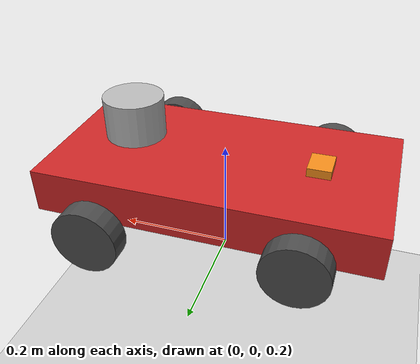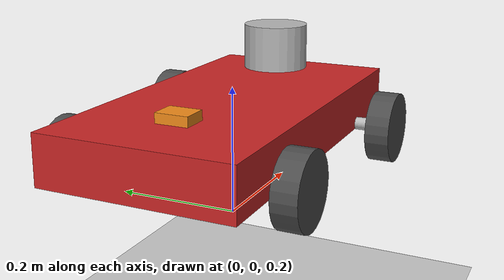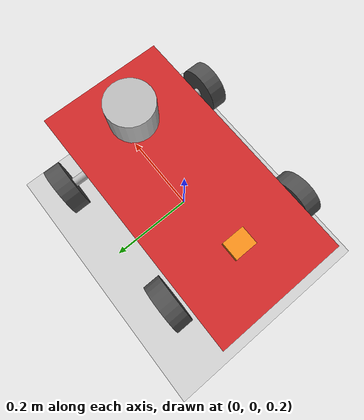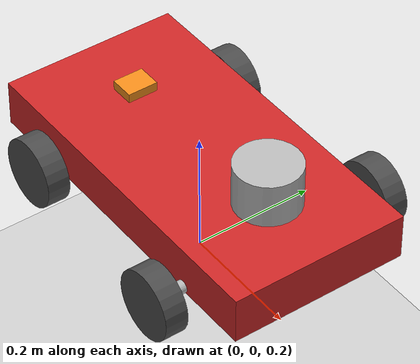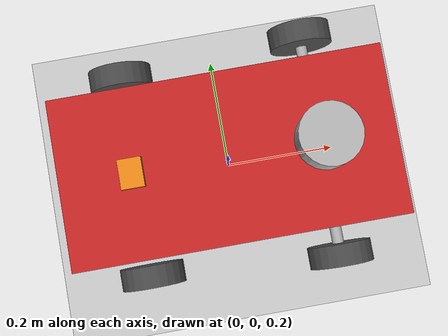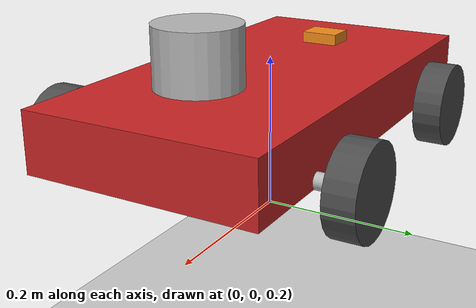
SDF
<?xml version="1.0" ?>
<sdf version="1.8">
  <world name="demo">
    <plugin
      filename="ignition-gazebo-physics-system"
      name="ignition::gazebo::systems::Physics">
    </plugin>
    <plugin
      filename="ignition-gazebo-user-commands-system"
      name="ignition::gazebo::systems::UserCommands">
    </plugin>
    <plugin
      filename="ignition-gazebo-sensors-system"
      name="ignition::gazebo::systems::Sensors">
      <render_engine>ogre2</render_engine>
    </plugin>
    <plugin filename="libignition-gazebo-imu-system.so"
        name="ignition::gazebo::systems::Imu">
    </plugin>
    <plugin
      filename="ignition-gazebo-scene-broadcaster-system"
      name="ignition::gazebo::systems::SceneBroadcaster">
    </plugin>
    <plugin
      filename="BasicSystem"
      name="ack_gazebo::BasicSystem">
    </plugin>
    <plugin
      filename="FullSystem"
      name="ack_gazebo::FullSystem">
    </plugin>

    <light name="sun" type="directional">
      <cast_shadows>true</cast_shadows>
      <pose>0 0 10 0 0 0</pose>
      <diffuse>0.8 0.8 0.8 1</diffuse>
      <specular>0.2 0.2 0.2 1</specular>
      <attenuation>
        <range>1000</range>
        <constant>0.9</constant>
        <linear>0.01</linear>
        <quadratic>0.001</quadratic>
      </attenuation>
      <direction>-0.5 0.1 -0.9</direction>
    </light>

    <model name="ground_plane">
      <static>true</static>
      <link name="link">
        <collision name="collision">
          <geometry>
            <plane>
              <normal>0 0 1</normal>
              <size>100 100</size>
            </plane>
          </geometry>
        </collision>
        <visual name="visual">
          <geometry>
            <plane>
              <normal>0 0 1</normal>
              <size>100 100</size>
            </plane>
          </geometry>
          <material>
            <ambient>0.8 0.8 0.8 1</ambient>
            <diffuse>0.8 0.8 0.8 1</diffuse>
            <specular>0.8 0.8 0.8 1</specular>
          </material>
        </visual>
      </link>
    </model>

    <model name="arv">
      <self_collide>false</self_collide>
      <pose>0 0 0.35 0 0 0</pose>
      <include merge="true">
        <uri>package://ack_description/models/arv</uri>
      </include>

      <plugin
        filename="ignition-gazebo-joint-state-publisher-system"
        name="ignition::gazebo::systems::JointStatePublisher">
      </plugin>

      <plugin
        filename="ignition-gazebo-pose-publisher-system"
        name="ignition::gazebo::systems::PosePublisher">
        <publish_link_pose>true</publish_link_pose>
        <use_pose_vector_msg>true</use_pose_vector_msg>
        <static_publisher>true</static_publisher>
        <static_update_frequency>1</static_update_frequency>
      </plugin>

      <plugin
        filename="ignition-gazebo-odometry-publisher-system"
        name="ignition::gazebo::systems::OdometryPublisher">
        <odom_frame>arv/odom</odom_frame>
        <robot_base_frame>arv</robot_base_frame>
      </plugin>

      <plugin
          filename="ignition-gazebo-ackermann-steering-system"
          name="ignition::gazebo::systems::AckermannSteering">
          <left_joint>LEFT_FRONT_WHEEL_JOINT</left_joint>
          <left_joint>LEFT_REAR_WHEEL_JOINT</left_joint>
          <right_joint>RIGHT_FRONT_WHEEL_JOINT</right_joint>
          <right_joint>RIGHT_REAR_WHEEL_JOINT</right_joint>
          <left_steering_joint>LEFT_HINGE_JOINT</left_steering_joint>
          <right_steering_joint>RIGHT_HINGE_JOINT</right_steering_joint>
          <wheel_separation>0.47</wheel_separation>
          <kingpin_width>0.47</kingpin_width>
          <wheel_base>0.324</wheel_base>
          <steering_limit>0.5</steering_limit>
          <wheel_radius>0.15</wheel_radius>
          <odom_publish_frequency>50</odom_publish_frequency>
          <min_velocity>-10</min_velocity>
          <max_velocity>10</max_velocity>
          <min_acceleration>-10</min_acceleration>
          <max_acceleration>10</max_acceleration>
      </plugin>
    </model>
  </world>
</sdf>

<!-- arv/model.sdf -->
<sdf version='1.9'>
  <model name='arv'>
    <link name='base_link'>
      <inertial>
        <pose>0 0 0 0 0 0</pose>
        <mass>2.2999999999999998</mass>
        <inertia>
          <ixx>0.01719729166666667</ixx>
          <ixy>0</ixy>
          <ixz>0</ixz>
          <iyy>0.06335062499999998</iyy>
          <iyz>0</iyz>
          <izz>0.06335062499999998</izz>
        </inertia>
      </inertial>
      <collision name='base_link_collision'>
        <pose>0 0 0 0 0 0</pose>
        <geometry>
          <box>
            <size>0.57 0.29 0.075</size>
          </box>
        </geometry>
        <surface>
          <contact>
            <ode/>
          </contact>
          <friction>
            <ode/>
          </friction>
        </surface>
      </collision>
      <visual name='base_link_visual'>
        <pose>0 0 0 0 0 0</pose>
        <geometry>
          <box>
            <size>0.57 0.29 0.075</size>
          </box>
        </geometry>
        <material>
          <script>
            <name>Gazebo/Red</name>
            <uri>file://media/materials/scripts/gazebo.material</uri>
          </script>
          <diffuse>1 0 0.125 1</diffuse>
          <ambient>1 0 0.125 1</ambient>
        </material>
      </visual>
    </link>
    <joint name='LEFT_HINGE_JOINT' type='revolute'>
      <pose relative_to='base_link'>0.162 0.16 -0.0295 -1.570796326794896 0 0</pose>
      <parent>base_link</parent>
      <child>LEFT_HINGE</child>
      <axis>
        <xyz>0 -1 0</xyz>
        <limit>
          <lower>-0.53000000000000003</lower>
          <upper>0.53000000000000003</upper>
          <effort>100</effort>
          <velocity>1</velocity>
        </limit>
        <dynamics>
          <damping>0</damping>
          <friction>0</friction>
          <spring_reference>0</spring_reference>
          <spring_stiffness>0</spring_stiffness>
        </dynamics>
      </axis>
    </joint>
    <link name='LEFT_HINGE'>
      <pose relative_to='LEFT_HINGE_JOINT'>0 0 0 0 0 0</pose>
      <inertial>
        <pose>0 0 0 0 0 0</pose>
        <mass>0.029999999999999999</mass>
        <inertia>
          <ixx>3.0000000000000001e-06</ixx>
          <ixy>0</ixy>
          <ixz>0</ixz>
          <iyy>3.0000000000000001e-06</iyy>
          <iyz>0</iyz>
          <izz>1.5e-06</izz>
        </inertia>
      </inertial>
      <visual name='LEFT_HINGE_visual'>
        <pose>0 0 0 0 0 0</pose>
        <geometry>
          <cylinder>
            <length>0.029999999999999999</length>
            <radius>0.01</radius>
          </cylinder>
        </geometry>
      </visual>
    </link>
    <joint name='LEFT_FRONT_WHEEL_JOINT' type='revolute'>
      <pose relative_to='LEFT_HINGE'>0 0 0.0335 0 0 0</pose>
      <parent>LEFT_HINGE</parent>
      <child>LEFT_FRONT_WHEEL</child>
      <axis>
        <xyz>0 0 1</xyz>
        <limit>
          <effort>100</effort>
          <velocity>200</velocity>
          <lower>-10000000000000000</lower>
          <upper>10000000000000000</upper>
        </limit>
        <dynamics>
          <damping>0</damping>
          <friction>0</friction>
          <spring_reference>0</spring_reference>
          <spring_stiffness>0</spring_stiffness>
        </dynamics>
      </axis>
    </joint>
    <link name='LEFT_FRONT_WHEEL'>
      <pose relative_to='LEFT_FRONT_WHEEL_JOINT'>0 0 0 0 0 0</pose>
      <inertial>
        <pose>0 0 0 0 0 0</pose>
        <mass>0.080000000000000002</mass>
        <inertia>
          <ixx>6.9626666666666669e-05</ixx>
          <ixy>0</ixy>
          <ixz>0</ixz>
          <iyy>6.9626666666666669e-05</iyy>
          <iyz>0</iyz>
          <izz>0.000121</izz>
        </inertia>
      </inertial>
      <collision name='LEFT_FRONT_WHEEL_collision'>
        <pose>0 0 0 0 0 0</pose>
        <geometry>
          <cylinder>
            <length>0.036999999999999998</length>
            <radius>0.055</radius>
          </cylinder>
        </geometry>
        <surface>
          <contact>
            <ode>
              <kp>10000000</kp>
              <kd>1</kd>
              <max_vel>100</max_vel>
              <min_depth>0.0050000000000000001</min_depth>
            </ode>
          </contact>
          <friction>
            <ode>
              <mu>0.5</mu>
              <mu2>0.5</mu2>
              <fdir1>1 0 0</fdir1>
            </ode>
          </friction>
        </surface>
      </collision>
      <visual name='LEFT_FRONT_WHEEL_visual'>
        <pose>0 0 0 0 0 0</pose>
        <geometry>
          <cylinder>
            <length>0.036999999999999998</length>
            <radius>0.055</radius>
          </cylinder>
        </geometry>
        <material>
          <script>
            <name>Gazebo/DarkGrey</name>
            <uri>file://media/materials/scripts/gazebo.material</uri>
          </script>
        </material>
      </visual>
    </link>
    <joint name='LEFT_REAR_WHEEL_JOINT' type='revolute'>
      <pose relative_to='base_link'>-0.162 0.1735 -0.0295 1.570796326794896 0 0</pose>
      <parent>base_link</parent>
      <child>LEFT_REAR_WHEEL</child>
      <axis>
        <xyz>0 0 -1</xyz>
        <limit>
          <effort>100</effort>
          <velocity>200</velocity>
          <lower>-10000000000000000</lower>
          <upper>10000000000000000</upper>
        </limit>
        <dynamics>
          <damping>0</damping>
          <friction>0</friction>
          <spring_reference>0</spring_reference>
          <spring_stiffness>0</spring_stiffness>
        </dynamics>
      </axis>
    </joint>
    <link name='LEFT_REAR_WHEEL'>
      <pose relative_to='LEFT_REAR_WHEEL_JOINT'>0 0 0 0 0 0</pose>
      <inertial>
        <pose>0 0 0 0 0 0</pose>
        <mass>0.080000000000000002</mass>
        <inertia>
          <ixx>6.9626666666666669e-05</ixx>
          <ixy>0</ixy>
          <ixz>0</ixz>
          <iyy>6.9626666666666669e-05</iyy>
          <iyz>0</iyz>
          <izz>0.000121</izz>
        </inertia>
      </inertial>
      <collision name='LEFT_REAR_WHEEL_collision'>
        <pose>0 0 0 0 0 0</pose>
        <geometry>
          <cylinder>
            <length>0.036999999999999998</length>
            <radius>0.055</radius>
          </cylinder>
        </geometry>
        <surface>
          <contact>
            <ode>
              <kp>10000000</kp>
              <kd>1</kd>
              <max_vel>100</max_vel>
              <min_depth>0.0050000000000000001</min_depth>
            </ode>
          </contact>
          <friction>
            <ode>
              <mu>0</mu>
              <mu2>0</mu2>
              <fdir1>1 0 0</fdir1>
            </ode>
          </friction>
        </surface>
      </collision>
      <visual name='LEFT_REAR_WHEEL_visual'>
        <pose>0 0 0 0 0 0</pose>
        <geometry>
          <cylinder>
            <length>0.036999999999999998</length>
            <radius>0.055</radius>
          </cylinder>
        </geometry>
        <material>
          <script>
            <name>Gazebo/DarkGrey</name>
            <uri>file://media/materials/scripts/gazebo.material</uri>
          </script>
        </material>
      </visual>
    </link>
    <joint name='RIGHT_HINGE_JOINT' type='revolute'>
      <pose relative_to='base_link'>0.162 -0.16 -0.0295 -1.570796326794896 0 0</pose>
      <parent>base_link</parent>
      <child>RIGHT_HINGE</child>
      <axis>
        <xyz>0 -1 0</xyz>
        <limit>
          <lower>-0.53000000000000003</lower>
          <upper>0.53000000000000003</upper>
          <effort>100</effort>
          <velocity>1</velocity>
        </limit>
        <dynamics>
          <damping>0</damping>
          <friction>0</friction>
          <spring_reference>0</spring_reference>
          <spring_stiffness>0</spring_stiffness>
        </dynamics>
      </axis>
    </joint>
    <link name='RIGHT_HINGE'>
      <pose relative_to='RIGHT_HINGE_JOINT'>0 0 0 0 0 0</pose>
      <inertial>
        <pose>0 0 0 0 0 0</pose>
        <mass>0.029999999999999999</mass>
        <inertia>
          <ixx>3.0000000000000001e-06</ixx>
          <ixy>0</ixy>
          <ixz>0</ixz>
          <iyy>3.0000000000000001e-06</iyy>
          <iyz>0</iyz>
          <izz>1.5e-06</izz>
        </inertia>
      </inertial>
      <visual name='RIGHT_HINGE_visual'>
        <pose>0 0 0 0 0 0</pose>
        <geometry>
          <cylinder>
            <length>0.029999999999999999</length>
            <radius>0.01</radius>
          </cylinder>
        </geometry>
      </visual>
    </link>
    <joint name='RIGHT_FRONT_WHEEL_JOINT' type='revolute'>
      <pose relative_to='RIGHT_HINGE'>0 0 -0.0335 0 0 0</pose>
      <parent>RIGHT_HINGE</parent>
      <child>RIGHT_FRONT_WHEEL</child>
      <axis>
        <xyz>0 0 1</xyz>
        <limit>
          <effort>100</effort>
          <velocity>200</velocity>
          <lower>-10000000000000000</lower>
          <upper>10000000000000000</upper>
        </limit>
        <dynamics>
          <damping>0</damping>
          <friction>0</friction>
          <spring_reference>0</spring_reference>
          <spring_stiffness>0</spring_stiffness>
        </dynamics>
      </axis>
    </joint>
    <link name='RIGHT_FRONT_WHEEL'>
      <pose relative_to='RIGHT_FRONT_WHEEL_JOINT'>0 0 0 0 0 0</pose>
      <inertial>
        <pose>0 0 0 0 0 0</pose>
        <mass>0.080000000000000002</mass>
        <inertia>
          <ixx>6.9626666666666669e-05</ixx>
          <ixy>0</ixy>
          <ixz>0</ixz>
          <iyy>6.9626666666666669e-05</iyy>
          <iyz>0</iyz>
          <izz>0.000121</izz>
        </inertia>
      </inertial>
      <collision name='RIGHT_FRONT_WHEEL_collision'>
        <pose>0 0 0 0 0 0</pose>
        <geometry>
          <cylinder>
            <length>0.036999999999999998</length>
            <radius>0.055</radius>
          </cylinder>
        </geometry>
        <surface>
          <contact>
            <ode>
              <kp>10000000</kp>
              <kd>1</kd>
              <max_vel>100</max_vel>
              <min_depth>0.0050000000000000001</min_depth>
            </ode>
          </contact>
          <friction>
            <ode>
              <mu>0.5</mu>
              <mu2>0.5</mu2>
              <fdir1>1 0 0</fdir1>
            </ode>
          </friction>
        </surface>
      </collision>
      <visual name='RIGHT_FRONT_WHEEL_visual'>
        <pose>0 0 0 0 0 0</pose>
        <geometry>
          <cylinder>
            <length>0.036999999999999998</length>
            <radius>0.055</radius>
          </cylinder>
        </geometry>
        <material>
          <script>
            <name>Gazebo/DarkGrey</name>
            <uri>file://media/materials/scripts/gazebo.material</uri>
          </script>
        </material>
      </visual>
    </link>
    <joint name='RIGHT_REAR_WHEEL_JOINT' type='revolute'>
      <pose relative_to='base_link'>-0.162 -0.1735 -0.0295 1.570796326794896 0 0</pose>
      <parent>base_link</parent>
      <child>RIGHT_REAR_WHEEL</child>
      <axis>
        <xyz>0 0 -1</xyz>
        <limit>
          <effort>100</effort>
          <velocity>200</velocity>
          <lower>-10000000000000000</lower>
          <upper>10000000000000000</upper>
        </limit>
        <dynamics>
          <damping>0</damping>
          <friction>0</friction>
          <spring_reference>0</spring_reference>
          <spring_stiffness>0</spring_stiffness>
        </dynamics>
      </axis>
    </joint>
    <link name='RIGHT_REAR_WHEEL'>
      <pose relative_to='RIGHT_REAR_WHEEL_JOINT'>0 0 0 0 0 0</pose>
      <inertial>
        <pose>0 0 0 0 0 0</pose>
        <mass>0.080000000000000002</mass>
        <inertia>
          <ixx>6.9626666666666669e-05</ixx>
          <ixy>0</ixy>
          <ixz>0</ixz>
          <iyy>6.9626666666666669e-05</iyy>
          <iyz>0</iyz>
          <izz>0.000121</izz>
        </inertia>
      </inertial>
      <collision name='RIGHT_REAR_WHEEL_collision'>
        <pose>0 0 0 0 0 0</pose>
        <geometry>
          <cylinder>
            <length>0.036999999999999998</length>
            <radius>0.055</radius>
          </cylinder>
        </geometry>
        <surface>
          <contact>
            <ode>
              <kp>10000000</kp>
              <kd>1</kd>
              <max_vel>100</max_vel>
              <min_depth>0.0050000000000000001</min_depth>
            </ode>
          </contact>
          <friction>
            <ode>
              <mu>0</mu>
              <mu2>0</mu2>
              <fdir1>1 0 0</fdir1>
            </ode>
          </friction>
        </surface>
      </collision>
      <visual name='RIGHT_REAR_WHEEL_visual'>
        <pose>0 0 0 0 0 0</pose>
        <geometry>
          <cylinder>
            <length>0.036999999999999998</length>
            <radius>0.055</radius>
          </cylinder>
        </geometry>
        <material>
          <script>
            <name>Gazebo/DarkGrey</name>
            <uri>file://media/materials/scripts/gazebo.material</uri>
          </script>
        </material>
      </visual>
    </link>
    <joint name='imu_joint' type='fixed'>
      <pose relative_to='base_link'>-0.162 0 0.0425 0 0 0</pose>
      <parent>base_link</parent>
      <child>imu_link</child>
      <axis>
        <dynamics>
          <spring_reference>0</spring_reference>
          <spring_stiffness>0</spring_stiffness>
        </dynamics>
        <xyz>0 0 1</xyz>
        <limit>
          <lower>-10000000000000000</lower>
          <upper>10000000000000000</upper>
        </limit>
      </axis>
      <physics>
        <ode>
          <limit>
            <cfm>0</cfm>
            <erp>0.20000000000000001</erp>
          </limit>
        </ode>
      </physics>
    </joint>
    <link name='imu_link'>
      <pose relative_to='imu_joint'>0 0 0 0 0 0</pose>
      <inertial>
        <pose>0 0 0 0 0 0</pose>
        <mass>0.01</mass>
        <inertia>
          <ixx>0.0001</ixx>
          <ixy>0</ixy>
          <ixz>0</ixz>
          <iyy>9.9999999999999995e-07</iyy>
          <iyz>0</iyz>
          <izz>0.0001</izz>
        </inertia>
      </inertial>
      <collision name='imu_link_collision'>
        <pose>0 0 0 0 0 0</pose>
        <geometry>
          <box>
            <size>0.001 0.001 0.001</size>
          </box>
        </geometry>
        <surface>
          <contact>
            <ode/>
          </contact>
          <friction>
            <ode/>
          </friction>
        </surface>
      </collision>
      <visual name='imu_link_visual'>
        <pose>0 0 0 0 0 0</pose>
        <geometry>
          <box>
            <size>0.04 0.05 0.02</size>
          </box>
        </geometry>
        <material>
          <script>
            <name>Gazebo/Orange</name>
            <uri>file://media/materials/scripts/gazebo.material</uri>
          </script>
        </material>
      </visual>
      <sensor name='imu_sensor' type='imu'>
        <always_on>true</always_on>
        <update_rate>400</update_rate>
        <visualize>true</visualize>
        <topic>/imu</topic>
        <ignition_frame_id>arv/imu_link</ignition_frame_id>
      </sensor>
    </link>
    <joint name='lidar_joint' type='fixed'>
      <pose relative_to='base_link'>0.162 0 0.08749999999999999 0 0 0</pose>
      <parent>base_link</parent>
      <child>lidar_link</child>
      <axis>
        <dynamics>
          <spring_reference>0</spring_reference>
          <spring_stiffness>0</spring_stiffness>
        </dynamics>
        <xyz>0 0 1</xyz>
        <limit>
          <lower>-10000000000000000</lower>
          <upper>10000000000000000</upper>
        </limit>
      </axis>
      <physics>
        <ode>
          <limit>
            <cfm>0</cfm>
            <erp>0.20000000000000001</erp>
          </limit>
        </ode>
      </physics>
    </joint>
    <link name='lidar_link'>
      <pose relative_to='lidar_joint'>0 0 0 0 0 0</pose>
      <inertial>
        <pose>0 0 0 0 0 0</pose>
        <mass>0.14999999999999999</mass>
        <inertia>
          <ixx>0.00016410712499999999</ixx>
          <ixy>0</ixy>
          <ixz>0</ixz>
          <iyy>0.00016410712499999999</iyy>
          <iyz>0</iyz>
          <izz>0.00019969200000000001</izz>
        </inertia>
      </inertial>
      <collision name='lidar_link_collision'>
        <pose>0 0 0 0 0 0</pose>
        <geometry>
          <cylinder>
            <length>0.0717</length>
            <radius>0.0516</radius>
          </cylinder>
        </geometry>
        <surface>
          <contact>
            <ode/>
          </contact>
          <friction>
            <ode/>
          </friction>
        </surface>
      </collision>
      <visual name='lidar_link_visual'>
        <pose>0 0 0 0 0 0</pose>
        <geometry>
          <cylinder>
            <length>0.0717</length>
            <radius>0.0516</radius>
          </cylinder>
        </geometry>
      </visual>
      <sensor name='gpu_lidar' type='gpu_lidar'>
        <topic>/scan</topic>
        <update_rate>400</update_rate>
        <lidar>
          <scan>
            <horizontal>
              <samples>640</samples>
              <resolution>1</resolution>
              <min_angle>-1.396263</min_angle>
              <max_angle>1.396263</max_angle>
            </horizontal>
            <vertical>
              <samples>1</samples>
              <resolution>1</resolution>
              <min_angle>0</min_angle>
              <max_angle>0</max_angle>
            </vertical>
          </scan>
          <range>
            <min>0.080000000000000002</min>
            <max>10</max>
            <resolution>0.01</resolution>
          </range>
          <noise>
            <type>gaussian</type>
            <mean>0</mean>
            <stddev>0.001</stddev>
          </noise>
        </lidar>
        <visualize>true</visualize>
        <ignition_frame_id>arv/lidar_link</ignition_frame_id>
        <alwaysOn>1</alwaysOn>
      </sensor>
    </link>
    <plugin name='ignition::gazebo::systems::AckermannSteering' filename='ignition-gazebo-ackermann-steering-system'>
      <left_joint>LEFT_FRONT_WHEEL_JOINT</left_joint>
      <left_joint>LEFT_REAR_WHEEL_JOINT</left_joint>
      <right_joint>RIGHT_FRONT_WHEEL_JOINT</right_joint>
      <right_joint>RIGHT_REAR_WHEEL_JOINT</right_joint>
      <left_steering_joint>LEFT_HINGE_JOINT</left_steering_joint>
      <right_steering_joint>RIGHT_HINGE_JOINT</right_steering_joint>
      <wheel_separation>0.47</wheel_separation>
      <kingpin_width>0.47</kingpin_width>
      <wheel_base>0.324</wheel_base>
      <steering_limit>0.5</steering_limit>
      <wheel_radius>0.15</wheel_radius>
      <odom_publish_frequency>50</odom_publish_frequency>
      <min_velocity>-10</min_velocity>
      <max_velocity>10</max_velocity>
      <min_acceleration>-10</min_acceleration>
      <max_acceleration>10</max_acceleration>
      <min_jerk>-10</min_jerk>
      <max_jerk>10</max_jerk>
      <odom_topic>arv/odom</odom_topic>
    </plugin>
    <frame name='base_to_base_inertia' attached_to='base_link'>
      <pose>0 0 0 0 -0 0</pose>
    </frame>
    <frame name='base_inertia' attached_to='base_to_base_inertia'/>
  </model>
</sdf>
